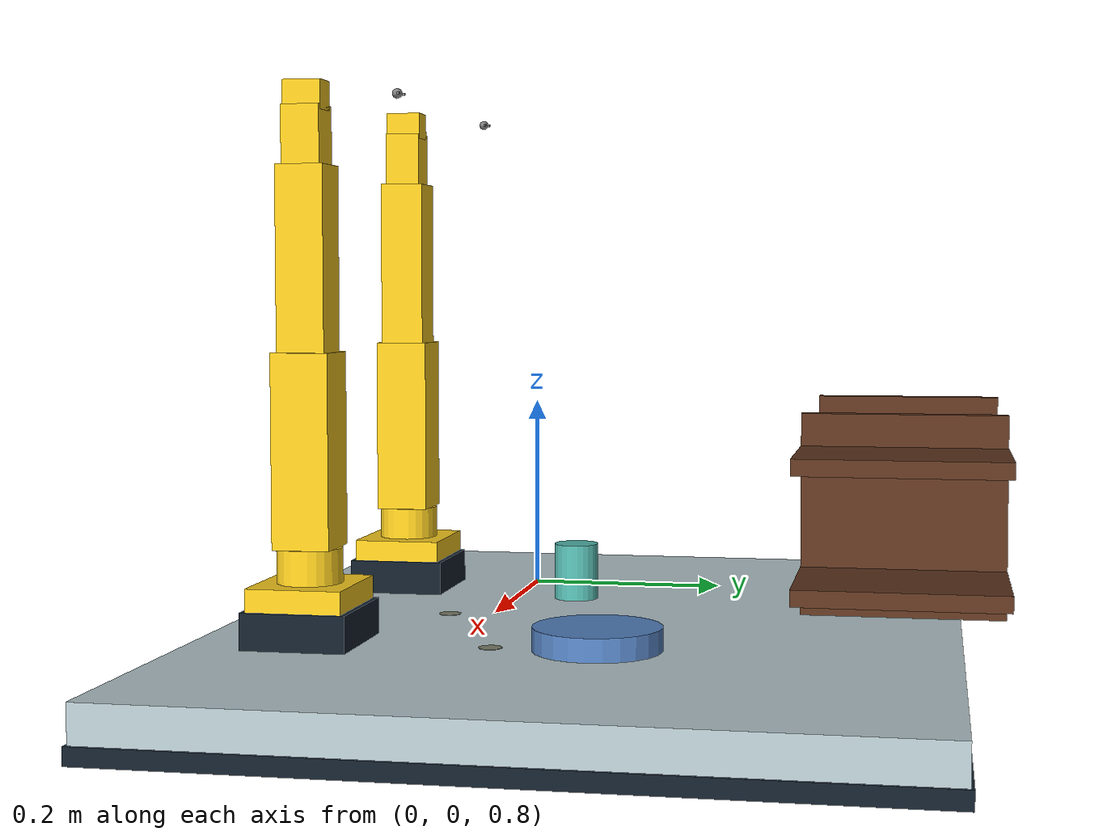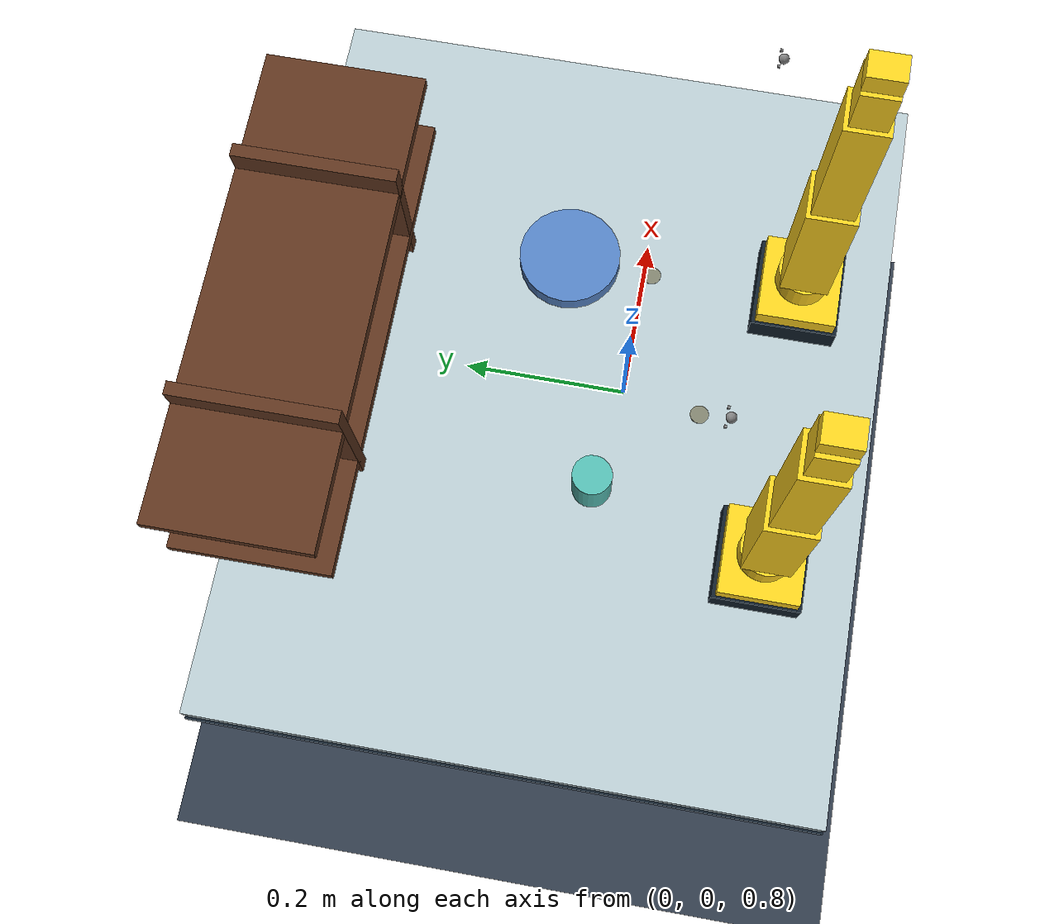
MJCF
<?xml version="1.0" ?>
<mujoco model="mambo_dual_so101_dinner">
  <compiler angle="radian" autolimits="true"/>
  <option timestep="0.002" impratio="10" noslip_iterations="3" cone="elliptic"/>
  <size njmax="4000" nconmax="1000"/>
  <default>
    <default class="sts3215">
      <joint damping="0.60" frictionloss="0.052" armature="0.028"/>
      <position kp="998.22" kv="2.731" forcerange="-3.35 3.35"/>
    </default>
  </default>
  <visual>
    <headlight ambient="0.35 0.35 0.35" diffuse="0.50 0.50 0.50" specular="0.20 0.20 0.20"/>
    <rgba haze="0.16 0.20 0.26 1"/>
    <global offwidth="1280" offheight="720"/>
  </visual>
  <asset>
    <texture name="sky" type="skybox" builtin="gradient" rgb1="0.15 0.21 0.29" rgb2="0.04 0.07 0.12" width="512" height="3072"/>
    <texture name="floor_tex" type="2d" builtin="checker" width="512" height="512" rgb1="0.18 0.22 0.28" rgb2="0.20 0.24 0.30"/>
    <material name="floor_mat" texture="floor_tex" texrepeat="8 8" reflectance="0.05"/>
    <material name="table_mat" rgba="0.72 0.79 0.81 1" specular="0.25" shininess="0.3"/>
    <material name="edge_mat" rgba="0.07 0.12 0.17 1" specular="0.45"/>
    <material name="arm_yellow" rgba="1 0.82 0.12 1" specular="0.3" shininess="0.5"/>
    <material name="shelf_wood" rgba="0.37 0.21 0.12 1" specular="0.2"/>
    <material name="mug_teal" rgba="0.33 0.73 0.69 1" specular="0.4"/>
    <material name="plate_blue" rgba="0.33 0.51 0.76 1" specular="0.35"/>
  </asset>
  <worldbody>
    <light name="key" pos="-0.7 -0.3 2.5" dir="0.2 0.2 -1" diffuse="0.75 0.77 0.8" castshadow="true"/>
    <light name="fill" pos="0.8 0.6 1.8" dir="-0.4 -0.3 -1" diffuse="0.5 0.55 0.6" castshadow="false"/>
    <geom name="floor" type="plane" size="3 3 0.1" material="floor_mat"/>
    <geom name="table" type="box" size="0.48 0.39 0.022" pos="0 0.07 0.738" material="table_mat" friction="0.35 0.01 0.001"/>
    <geom name="table_edge" type="box" size="0.483 0.393 0.009" pos="0 0.07 0.712" material="edge_mat"/>
    <!-- Shelf unit behind the table (staging only). NO drawer: no slider joint anywhere. -->
    <geom name="shelf_board_low" type="box" size="0.30 0.10 0.008" pos="0 0.40 0.84" material="shelf_wood"/>
    <geom name="shelf_board_high" type="box" size="0.30 0.10 0.008" pos="0 0.40 0.96" material="shelf_wood"/>
    <geom name="shelf_side_left" type="box" size="0.008 0.10 0.10" pos="-0.15 0.40 0.90" material="shelf_wood"/>
    <geom name="shelf_side_right" type="box" size="0.008 0.10 0.10" pos="0.15 0.40 0.90" material="shelf_wood"/>
    <!-- LEFT SO-101 (faces the table). Bases sit close enough that the
      staging-to-relay slide stays in the bent, healthy workspace throughout.
      Pitch joints about X reach forward (+Y). -->
    <body name="left_base" pos="-0.18 -0.20 0.778">
      <geom name="left_base_collision" type="box" size="0.058 0.055 0.02" material="edge_mat"/>
      <!-- Primitive base housing (visual-only): block + pedestal drum. -->
      <geom name="left_base_housing" type="box" size="0.055 0.05 0.022" pos="0 0 0.022" material="arm_yellow" contype="0" conaffinity="0"/>
      <geom name="left_base_drum" type="cylinder" size="0.034 0.020" pos="0 0 0.060" material="arm_yellow" contype="0" conaffinity="0"/>
      <body name="left_pan" pos="0 0 0.02">
        <inertial pos="0 0 0.01" mass="0.100" diaginertia="8e-05 8e-05 2e-05"/>
        <joint name="left_shoulder_pan" type="hinge" axis="0 0 1" range="-1.91986 1.91986" class="sts3215"/>
        <body name="left_upper" pos="0 0 0.06">
          <inertial pos="0 0 0.10" mass="0.103" diaginertia="4e-05 1.5e-04 1.4e-04"/>
          <joint name="left_shoulder_lift" type="hinge" axis="1 0 0" range="-1.74533 1.74533" class="sts3215"/>
          <geom name="left_upper_col" type="box" size="0.03 0.03 0.10" pos="0 0 0.10" material="arm_yellow"/>
          <body name="left_fore" pos="0 0 0.20">
            <inertial pos="0 0 0.09" mass="0.104" diaginertia="3e-05 1.6e-04 1.5e-04"/>
            <joint name="left_elbow_flex" type="hinge" axis="1 0 0" range="-1.69 1.69" class="sts3215"/>
            <geom name="left_fore_col" type="box" size="0.025 0.025 0.095" pos="0 0 0.095" material="arm_yellow"/>
            <body name="left_wrist" pos="0 0 0.19">
              <inertial pos="0 0 0.03" mass="0.079" diaginertia="3.7e-05 2.5e-05 2.1e-05"/>
              <joint name="left_wrist_flex" type="hinge" axis="1 0 0" range="-1.65806 1.65806" class="sts3215"/>
              <geom name="left_wrist_col" type="box" size="0.02 0.02 0.03" pos="0 0 0.03" material="arm_yellow"/>
              <!-- Tool mount pitched 90 deg about X (pads-forward side grasp).
                Static pad at the ARCH local offset; pinch axis stays world X. -->
              <body name="left_tool" pos="0 0 0.07" quat="0.707107 0.707107 0 0">
                <inertial pos="0 0 -0.02" mass="0.087" diaginertia="2.8e-05 4.3e-05 3.5e-05"/>
                <joint name="left_wrist_roll" type="hinge" axis="0 0 1" range="-2.74385 2.84121" class="sts3215"/>
                <geom name="left_tool_col" type="box" size="0.015 0.015 0.02" pos="0 0 0" material="arm_yellow"/>
                <site name="left_grip" pos="0 0 -0.096"/>
                <!-- per-arm fingertip pads: 2.5 mm boxes, frozen size/pos/friction -->
                <geom name="left_static_finger_pad" type="box" size="0.00125 0.00125 0.00125"
                  pos="-0.008875 0.0 -0.100" friction="1 0.05 0.001" condim="4"/>
                <body name="left_jaw" pos="0.0202 0.0188 -0.0234" quat="0.707107 0.707107 0 0">
                  <inertial pos="0 -0.03 0.02" mass="0.012" diaginertia="6.6e-06 1.9e-06 5.3e-06"/>
                  <joint name="left_gripper" type="hinge" axis="0 0 1" range="-0.17453 1.74533" class="sts3215"/>
                  <geom name="left_moving_finger_pad" type="box" size="0.00125 0.00125 0.00125"
                    pos="-0.01136 -0.076 0.019" friction="1 0.05 0.001" condim="4"/>
                </body>
              </body>
            </body>
          </body>
        </body>
      </body>
    </body>
    <!-- RIGHT SO-101: mirror mount, identical chain. -->
    <body name="right_base" pos="0.18 -0.20 0.778">
      <geom name="right_base_collision" type="box" size="0.058 0.055 0.02" material="edge_mat"/>
      <!-- Primitive base housing (visual-only): block + pedestal drum. -->
      <geom name="right_base_housing" type="box" size="0.055 0.05 0.022" pos="0 0 0.022" material="arm_yellow" contype="0" conaffinity="0"/>
      <geom name="right_base_drum" type="cylinder" size="0.034 0.020" pos="0 0 0.060" material="arm_yellow" contype="0" conaffinity="0"/>
      <body name="right_pan" pos="0 0 0.02">
        <inertial pos="0 0 0.01" mass="0.100" diaginertia="8e-05 8e-05 2e-05"/>
        <joint name="right_shoulder_pan" type="hinge" axis="0 0 1" range="-1.91986 1.91986" class="sts3215"/>
        <body name="right_upper" pos="0 0 0.06">
          <inertial pos="0 0 0.10" mass="0.103" diaginertia="4e-05 1.5e-04 1.4e-04"/>
          <joint name="right_shoulder_lift" type="hinge" axis="1 0 0" range="-1.74533 1.74533" class="sts3215"/>
          <geom name="right_upper_col" type="box" size="0.03 0.03 0.10" pos="0 0 0.10" material="arm_yellow"/>
          <body name="right_fore" pos="0 0 0.20">
            <inertial pos="0 0 0.09" mass="0.104" diaginertia="3e-05 1.6e-04 1.5e-04"/>
            <joint name="right_elbow_flex" type="hinge" axis="1 0 0" range="-1.69 1.69" class="sts3215"/>
            <geom name="right_fore_col" type="box" size="0.025 0.025 0.095" pos="0 0 0.095" material="arm_yellow"/>
            <body name="right_wrist" pos="0 0 0.19">
              <inertial pos="0 0 0.03" mass="0.079" diaginertia="3.7e-05 2.5e-05 2.1e-05"/>
              <joint name="right_wrist_flex" type="hinge" axis="1 0 0" range="-1.65806 1.65806" class="sts3215"/>
              <geom name="right_wrist_col" type="box" size="0.02 0.02 0.03" pos="0 0 0.03" material="arm_yellow"/>
              <body name="right_tool" pos="0 0 0.07" quat="0.707107 0.707107 0 0">
                <inertial pos="0 0 -0.02" mass="0.087" diaginertia="2.8e-05 4.3e-05 3.5e-05"/>
                <joint name="right_wrist_roll" type="hinge" axis="0 0 1" range="-2.74385 2.84121" class="sts3215"/>
                <geom name="right_tool_col" type="box" size="0.015 0.015 0.02" pos="0 0 0" material="arm_yellow"/>
                <site name="right_grip" pos="0 0 -0.096"/>
                <camera name="wrist_cam" pos="0.02 0 0.02" zaxis="0 0 -1"/>
                <!-- per-arm fingertip pads: 2.5 mm boxes, frozen size/pos/friction -->
                <geom name="right_static_finger_pad" type="box" size="0.00125 0.00125 0.00125"
                  pos="-0.008875 0.0 -0.100" friction="1 0.05 0.001" condim="4"/>
                <body name="right_jaw" pos="0.0202 0.0188 -0.0234" quat="0.707107 0.707107 0 0">
                  <inertial pos="0 -0.03 0.02" mass="0.012" diaginertia="6.6e-06 1.9e-06 5.3e-06"/>
                  <joint name="right_gripper" type="hinge" axis="0 0 1" range="-0.17453 1.74533" class="sts3215"/>
                  <geom name="right_moving_finger_pad" type="box" size="0.00125 0.00125 0.00125"
                    pos="-0.01136 -0.076 0.019" friction="1 0.05 0.001" condim="4"/>
                </body>
              </body>
            </body>
          </body>
        </body>
      </body>
    </body>
    <!-- Mug (left staging) and plate (right staging): free bodies after spawn. -->
    <body name="mug" pos="-0.12 0.02 0.794">
      <freejoint name="mug_free"/>
      <geom name="mug_geom" type="cylinder" size="0.025 0.032" mass="0.045" material="mug_teal" friction="0.8 0.005 0.0001" condim="4" solref="0.012 1"/>
    </body>
    <body name="plate" pos="0.18 0.10 0.774">
      <freejoint name="plate_free"/>
      <geom name="plate_geom" type="cylinder" size="0.066 0.012" mass="0.065" material="plate_blue" friction="0.8 0.005 0.0001" condim="4" solref="0.012 1"/>
    </body>
    <!-- Table-supported relay point [0, -0.10, table_z]: visual marker only. -->
    <body name="relay_marker" pos="0 -0.10 0.7606">
      <geom name="relay_ring" type="cylinder" size="0.012 0.0003" rgba="0.5 0.51 0.43 0.9" contype="0" conaffinity="0" mass="0"/>
    </body>
    <body name="dest_marker" pos="0.18 -0.01 0.7606">
      <geom name="dest_ring" type="cylinder" size="0.012 0.0003" rgba="0.5 0.51 0.43 0.9" contype="0" conaffinity="0" mass="0"/>
    </body>
    <!-- Fixed rig: 4 cameras (256x256 set at render time, 20 fps set by sampling). -->
    <camera name="overhead" pos="0 0.07 1.6" zaxis="0 0 1"/>
    <camera name="table_left" pos="-0.7 -0.5 1.2" zaxis="-0.69706 -0.5676 0.43811"/>
    <camera name="table_right" pos="0.7 -0.5 1.2" zaxis="0.69706 -0.5676 0.43811"/>
  </worldbody>
  <actuator>
    <position name="left_pan" joint="left_shoulder_pan" class="sts3215"/>
    <position name="left_lift" joint="left_shoulder_lift" class="sts3215"/>
    <position name="left_elbow" joint="left_elbow_flex" class="sts3215"/>
    <position name="left_wrist" joint="left_wrist_flex" class="sts3215"/>
    <position name="left_roll" joint="left_wrist_roll" class="sts3215"/>
    <position name="left_jaw_act" joint="left_gripper" class="sts3215"/>
    <position name="right_pan" joint="right_shoulder_pan" class="sts3215"/>
    <position name="right_lift" joint="right_shoulder_lift" class="sts3215"/>
    <position name="right_elbow" joint="right_elbow_flex" class="sts3215"/>
    <position name="right_wrist" joint="right_wrist_flex" class="sts3215"/>
    <position name="right_roll" joint="right_wrist_roll" class="sts3215"/>
    <position name="right_jaw_act" joint="right_gripper" class="sts3215"/>
  </actuator>
  <contact>
    <!-- Adjacent-body self-collision exclusions
      (base/pan, pan/upper, upper/fore, fore/wrist, wrist/tool, tool/jaw). -->
    <exclude body1="left_base" body2="left_pan"/>
    <exclude body1="left_pan" body2="left_upper"/>
    <exclude body1="left_upper" body2="left_fore"/>
    <exclude body1="left_fore" body2="left_wrist"/>
    <exclude body1="left_wrist" body2="left_tool"/>
    <exclude body1="left_tool" body2="left_jaw"/>
    <exclude body1="right_base" body2="right_pan"/>
    <exclude body1="right_pan" body2="right_upper"/>
    <exclude body1="right_upper" body2="right_fore"/>
    <exclude body1="right_fore" body2="right_wrist"/>
    <exclude body1="right_wrist" body2="right_tool"/>
    <exclude body1="right_tool" body2="right_jaw"/>
  </contact>
</mujoco>
